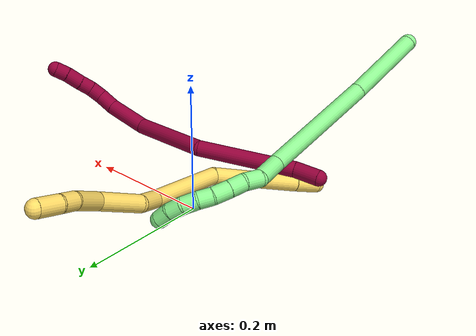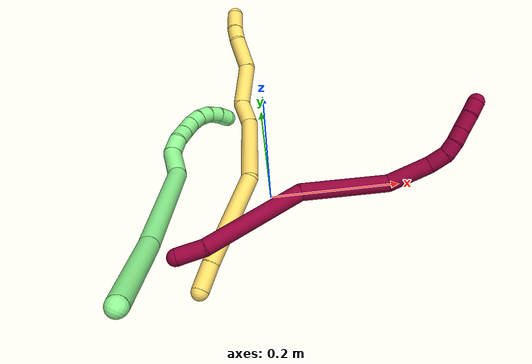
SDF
<sdf version="1.7">
 <world name="default">
  <model name="5">
   <static>0</static>
   <link name="5">
    <collision name="collision-cylinder-e_1_1_4">
     <pose>0.008206 0.017123 0.00592 -1.2379 0.425278 -0.305196</pose>
     <geometry><cylinder><radius>0.0125</radius><length>0.039779</length></cylinder></geometry>
     <surface>
      <friction><ode><mu>1.16</mu><mu2>1.16</mu2><slip1>0</slip1><slip2>0</slip2></ode></friction>
      <contact><ode><kp>1e+06</kp><kd>1</kd><max_vel>0</max_vel><min_depth>0.001</min_depth></ode></contact>
     </surface>
    </collision>
    <visual name="visual-cylinder-e_1_1_4">
     <pose>0.008206 0.017123 0.00592 -1.2379 0.425278 -0.305196</pose>
     <geometry><cylinder><radius>0.0125</radius><length>0.039779</length></cylinder></geometry>
     <material><ambient>1 0.858824 0.4 1</ambient></material>
    </visual>
    <collision name="collision-cylinder-e_2_4_5">
     <pose>0.048808 0.091566 0.031817 -1.23545 0.490249 -0.351789</pose>
     <geometry><cylinder><radius>0.0125</radius><length>0.137611</length></cylinder></geometry>
     <surface>
      <friction><ode><mu>1.16</mu><mu2>1.16</mu2><slip1>0</slip1><slip2>0</slip2></ode></friction>
      <contact><ode><kp>1e+06</kp><kd>1</kd><max_vel>0</max_vel><min_depth>0.001</min_depth></ode></contact>
     </surface>
    </collision>
    <visual name="visual-cylinder-e_2_4_5">
     <pose>0.048808 0.091566 0.031817 -1.23545 0.490249 -0.351789</pose>
     <geometry><cylinder><radius>0.0125</radius><length>0.137611</length></cylinder></geometry>
     <material><ambient>1 0.858824 0.4 1</ambient></material>
    </visual>
    <collision name="collision-cylinder-e_3_5_6">
     <pose>0.08397 0.203935 0.059121 -1.43846 0.049747 -0.043566</pose>
     <geometry><cylinder><radius>0.0125</radius><length>0.111206</length></cylinder></geometry>
     <surface>
      <friction><ode><mu>1.16</mu><mu2>1.16</mu2><slip1>0</slip1><slip2>0</slip2></ode></friction>
      <contact><ode><kp>1e+06</kp><kd>1</kd><max_vel>0</max_vel><min_depth>0.001</min_depth></ode></contact>
     </surface>
    </collision>
    <visual name="visual-cylinder-e_3_5_6">
     <pose>0.08397 0.203935 0.059121 -1.43846 0.049747 -0.043566</pose>
     <geometry><cylinder><radius>0.0125</radius><length>0.111206</length></cylinder></geometry>
     <material><ambient>1 0.858824 0.4 1</ambient></material>
    </visual>
    <collision name="collision-cylinder-e_4_6_7">
     <pose>0.082564 0.275597 0.07439 -1.12493 -0.222772 0.140783</pose>
     <geometry><cylinder><radius>0.0125</radius><length>0.03776</length></cylinder></geometry>
     <surface>
      <friction><ode><mu>1.16</mu><mu2>1.16</mu2><slip1>0</slip1><slip2>0</slip2></ode></friction>
      <contact><ode><kp>1e+06</kp><kd>1</kd><max_vel>0</max_vel><min_depth>0.001</min_depth></ode></contact>
     </surface>
    </collision>
    <visual name="visual-cylinder-e_4_6_7">
     <pose>0.082564 0.275597 0.07439 -1.12493 -0.222772 0.140783</pose>
     <geometry><cylinder><radius>0.0125</radius><length>0.03776</length></cylinder></geometry>
     <material><ambient>1 0.858824 0.4 1</ambient></material>
    </visual>
    <collision name="collision-cylinder-e_5_7_8">
     <pose>0.086116 0.321503 0.096524 -1.11959 0.23296 -0.146389</pose>
     <geometry><cylinder><radius>0.0125</radius><length>0.066908</length></cylinder></geometry>
     <surface>
      <friction><ode><mu>1.16</mu><mu2>1.16</mu2><slip1>0</slip1><slip2>0</slip2></ode></friction>
      <contact><ode><kp>1e+06</kp><kd>1</kd><max_vel>0</max_vel><min_depth>0.001</min_depth></ode></contact>
     </surface>
    </collision>
    <visual name="visual-cylinder-e_5_7_8">
     <pose>0.086116 0.321503 0.096524 -1.11959 0.23296 -0.146389</pose>
     <geometry><cylinder><radius>0.0125</radius><length>0.066908</length></cylinder></geometry>
     <material><ambient>1 0.858824 0.4 1</ambient></material>
    </visual>
    <collision name="collision-cylinder-e_6_8_9">
     <pose>0.089291 0.370951 0.124979 -0.955018 -0.182175 0.094458</pose>
     <geometry><cylinder><radius>0.0125</radius><length>0.050211</length></cylinder></geometry>
     <surface>
      <friction><ode><mu>1.16</mu><mu2>1.16</mu2><slip1>0</slip1><slip2>0</slip2></ode></friction>
      <contact><ode><kp>1e+06</kp><kd>1</kd><max_vel>0</max_vel><min_depth>0.001</min_depth></ode></contact>
     </surface>
    </collision>
    <visual name="visual-cylinder-e_6_8_9">
     <pose>0.089291 0.370951 0.124979 -0.955018 -0.182175 0.094458</pose>
     <geometry><cylinder><radius>0.0125</radius><length>0.050211</length></cylinder></geometry>
     <material><ambient>1 0.858824 0.4 1</ambient></material>
    </visual>
    <collision name="collision-cylinder-e_7_9_10">
     <pose>0.083806 0.401878 0.143663 -1.18114 -0.080214 0.05379</pose>
     <geometry><cylinder><radius>0.0125</radius><length>0.023364</length></cylinder></geometry>
     <surface>
      <friction><ode><mu>1.16</mu><mu2>1.16</mu2><slip1>0</slip1><slip2>0</slip2></ode></friction>
      <contact><ode><kp>1e+06</kp><kd>1</kd><max_vel>0</max_vel><min_depth>0.001</min_depth></ode></contact>
     </surface>
    </collision>
    <visual name="visual-cylinder-e_7_9_10">
     <pose>0.083806 0.401878 0.143663 -1.18114 -0.080214 0.05379</pose>
     <geometry><cylinder><radius>0.0125</radius><length>0.023364</length></cylinder></geometry>
     <material><ambient>1 0.858824 0.4 1</ambient></material>
    </visual>
    <collision name="collision-cylinder-e_8_10_2">
     <pose>0.084178 0.42849 0.152806 -1.28123 0.078972 -0.058887</pose>
     <geometry><cylinder><radius>0.0125</radius><length>0.03316</length></cylinder></geometry>
     <surface>
      <friction><ode><mu>1.16</mu><mu2>1.16</mu2><slip1>0</slip1><slip2>0</slip2></ode></friction>
      <contact><ode><kp>1e+06</kp><kd>1</kd><max_vel>0</max_vel><min_depth>0.001</min_depth></ode></contact>
     </surface>
    </collision>
    <visual name="visual-cylinder-e_8_10_2">
     <pose>0.084178 0.42849 0.152806 -1.28123 0.078972 -0.058887</pose>
     <geometry><cylinder><radius>0.0125</radius><length>0.03316</length></cylinder></geometry>
     <material><ambient>1 0.858824 0.4 1</ambient></material>
    </visual>
    <collision name="collision-sphere-2">
     <pose>0.085486 0.44433 0.157526 0 -0 0</pose>
     <geometry><sphere><radius>0.0125</radius></sphere></geometry>
     <surface>
      <friction><ode><mu>1.16</mu><mu2>1.16</mu2><slip1>0</slip1><slip2>0</slip2></ode></friction>
      <contact><ode><kp>1e+06</kp><kd>1</kd><max_vel>0</max_vel><min_depth>0.001</min_depth></ode></contact>
     </surface>
    </collision>
    <visual name="visual-sphere-2">
     <pose>0.085486 0.44433 0.157526 0 -0 0</pose>
     <geometry><sphere><radius>0.0125</radius></sphere></geometry>
     <material><ambient>1 0.858824 0.4 1</ambient></material>
    </visual>
    <collision name="collision-sphere-10">
     <pose>0.08287 0.41265 0.148087 0 -0 0</pose>
     <geometry><sphere><radius>0.0125</radius></sphere></geometry>
     <surface>
      <friction><ode><mu>1.16</mu><mu2>1.16</mu2><slip1>0</slip1><slip2>0</slip2></ode></friction>
      <contact><ode><kp>1e+06</kp><kd>1</kd><max_vel>0</max_vel><min_depth>0.001</min_depth></ode></contact>
     </surface>
    </collision>
    <visual name="visual-sphere-10">
     <pose>0.08287 0.41265 0.148087 0 -0 0</pose>
     <geometry><sphere><radius>0.0125</radius></sphere></geometry>
     <material><ambient>1 0.858824 0.4 1</ambient></material>
    </visual>
    <collision name="collision-sphere-9">
     <pose>0.084742 0.391106 0.13924 0 -0 0</pose>
     <geometry><sphere><radius>0.0125</radius></sphere></geometry>
     <surface>
      <friction><ode><mu>1.16</mu><mu2>1.16</mu2><slip1>0</slip1><slip2>0</slip2></ode></friction>
      <contact><ode><kp>1e+06</kp><kd>1</kd><max_vel>0</max_vel><min_depth>0.001</min_depth></ode></contact>
     </surface>
    </collision>
    <visual name="visual-sphere-9">
     <pose>0.084742 0.391106 0.13924 0 -0 0</pose>
     <geometry><sphere><radius>0.0125</radius></sphere></geometry>
     <material><ambient>1 0.858824 0.4 1</ambient></material>
    </visual>
    <collision name="collision-sphere-4">
     <pose>0.016412 0.034246 0.011841 0 -0 0</pose>
     <geometry><sphere><radius>0.0125</radius></sphere></geometry>
     <surface>
      <friction><ode><mu>1.16</mu><mu2>1.16</mu2><slip1>0</slip1><slip2>0</slip2></ode></friction>
      <contact><ode><kp>1e+06</kp><kd>1</kd><max_vel>0</max_vel><min_depth>0.001</min_depth></ode></contact>
     </surface>
    </collision>
    <visual name="visual-sphere-4">
     <pose>0.016412 0.034246 0.011841 0 -0 0</pose>
     <geometry><sphere><radius>0.0125</radius></sphere></geometry>
     <material><ambient>1 0.858824 0.4 1</ambient></material>
    </visual>
    <collision name="collision-sphere-1">
     <geometry><sphere><radius>0.0125</radius></sphere></geometry>
     <surface>
      <friction><ode><mu>1.16</mu><mu2>1.16</mu2><slip1>0</slip1><slip2>0</slip2></ode></friction>
      <contact><ode><kp>1e+06</kp><kd>1</kd><max_vel>0</max_vel><min_depth>0.001</min_depth></ode></contact>
     </surface>
    </collision>
    <visual name="visual-sphere-1">
     <geometry><sphere><radius>0.0125</radius></sphere></geometry>
     <material><ambient>1 0.858824 0.4 1</ambient></material>
    </visual>
    <collision name="collision-sphere-8">
     <pose>0.093839 0.350796 0.110718 0 -0 0</pose>
     <geometry><sphere><radius>0.0125</radius></sphere></geometry>
     <surface>
      <friction><ode><mu>1.16</mu><mu2>1.16</mu2><slip1>0</slip1><slip2>0</slip2></ode></friction>
      <contact><ode><kp>1e+06</kp><kd>1</kd><max_vel>0</max_vel><min_depth>0.001</min_depth></ode></contact>
     </surface>
    </collision>
    <visual name="visual-sphere-8">
     <pose>0.093839 0.350796 0.110718 0 -0 0</pose>
     <geometry><sphere><radius>0.0125</radius></sphere></geometry>
     <material><ambient>1 0.858824 0.4 1</ambient></material>
    </visual>
    <collision name="collision-sphere-5">
     <pose>0.081205 0.148886 0.051793 0 -0 0</pose>
     <geometry><sphere><radius>0.0125</radius></sphere></geometry>
     <surface>
      <friction><ode><mu>1.16</mu><mu2>1.16</mu2><slip1>0</slip1><slip2>0</slip2></ode></friction>
      <contact><ode><kp>1e+06</kp><kd>1</kd><max_vel>0</max_vel><min_depth>0.001</min_depth></ode></contact>
     </surface>
    </collision>
    <visual name="visual-sphere-5">
     <pose>0.081205 0.148886 0.051793 0 -0 0</pose>
     <geometry><sphere><radius>0.0125</radius></sphere></geometry>
     <material><ambient>1 0.858824 0.4 1</ambient></material>
    </visual>
    <collision name="collision-sphere-6">
     <pose>0.086735 0.258984 0.066449 0 -0 0</pose>
     <geometry><sphere><radius>0.0125</radius></sphere></geometry>
     <surface>
      <friction><ode><mu>1.16</mu><mu2>1.16</mu2><slip1>0</slip1><slip2>0</slip2></ode></friction>
      <contact><ode><kp>1e+06</kp><kd>1</kd><max_vel>0</max_vel><min_depth>0.001</min_depth></ode></contact>
     </surface>
    </collision>
    <visual name="visual-sphere-6">
     <pose>0.086735 0.258984 0.066449 0 -0 0</pose>
     <geometry><sphere><radius>0.0125</radius></sphere></geometry>
     <material><ambient>1 0.858824 0.4 1</ambient></material>
    </visual>
    <collision name="collision-sphere-7">
     <pose>0.078393 0.292211 0.08233 0 -0 0</pose>
     <geometry><sphere><radius>0.0125</radius></sphere></geometry>
     <surface>
      <friction><ode><mu>1.16</mu><mu2>1.16</mu2><slip1>0</slip1><slip2>0</slip2></ode></friction>
      <contact><ode><kp>1e+06</kp><kd>1</kd><max_vel>0</max_vel><min_depth>0.001</min_depth></ode></contact>
     </surface>
    </collision>
    <visual name="visual-sphere-7">
     <pose>0.078393 0.292211 0.08233 0 -0 0</pose>
     <geometry><sphere><radius>0.0125</radius></sphere></geometry>
     <material><ambient>1 0.858824 0.4 1</ambient></material>
    </visual>
    <inertial>
     <pose>0.068987 0.220205 0.07031 0 -0 0</pose>
     <mass>0.5</mass>
     <inertia>
      <ixx>0.00029</ixx>
      <ixy>0</ixy>
      <ixz>0</ixz>
      <iyy>0.000104</iyy>
      <iyz>0</iyz>
      <izz>-0.000459</izz>
     </inertia>
    </inertial>
   </link>
   <pose>-0.107225 -0.165229 0.013046 -0.07638 -0.115356 -0.018087</pose>
  </model>
  <model name="8">
   <static>0</static>
   <link name="8">
    <collision name="collision-cylinder-e_1_1_4">
     <pose>0.017876 0.003053 -0.00778 -2.76762 1.13346 -2.56363</pose>
     <geometry><cylinder><radius>0.0125</radius><length>0.039466</length></cylinder></geometry>
     <surface>
      <friction><ode><mu>1.16</mu><mu2>1.16</mu2><slip1>0</slip1><slip2>0</slip2></ode></friction>
      <contact><ode><kp>1e+06</kp><kd>1</kd><max_vel>0</max_vel><min_depth>0.001</min_depth></ode></contact>
     </surface>
    </collision>
    <visual name="visual-cylinder-e_1_1_4">
     <pose>0.017876 0.003053 -0.00778 -2.76762 1.13346 -2.56363</pose>
     <geometry><cylinder><radius>0.0125</radius><length>0.039466</length></cylinder></geometry>
     <material><ambient>0.584314 0 0.227451 1</ambient></material>
    </visual>
    <collision name="collision-cylinder-e_2_4_5">
     <pose>0.109641 0.022377 -0.026862 -2.17791 1.30884 -1.94501</pose>
     <geometry><cylinder><radius>0.0125</radius><length>0.152998</length></cylinder></geometry>
     <surface>
      <friction><ode><mu>1.16</mu><mu2>1.16</mu2><slip1>0</slip1><slip2>0</slip2></ode></friction>
      <contact><ode><kp>1e+06</kp><kd>1</kd><max_vel>0</max_vel><min_depth>0.001</min_depth></ode></contact>
     </surface>
    </collision>
    <visual name="visual-cylinder-e_2_4_5">
     <pose>0.109641 0.022377 -0.026862 -2.17791 1.30884 -1.94501</pose>
     <geometry><cylinder><radius>0.0125</radius><length>0.152998</length></cylinder></geometry>
     <material><ambient>0.584314 0 0.227451 1</ambient></material>
    </visual>
    <collision name="collision-cylinder-e_3_5_6">
     <pose>0.233898 0.051314 -0.074525 -2.80639 0.918102 -2.48198</pose>
     <geometry><cylinder><radius>0.0125</radius><length>0.126799</length></cylinder></geometry>
     <surface>
      <friction><ode><mu>1.16</mu><mu2>1.16</mu2><slip1>0</slip1><slip2>0</slip2></ode></friction>
      <contact><ode><kp>1e+06</kp><kd>1</kd><max_vel>0</max_vel><min_depth>0.001</min_depth></ode></contact>
     </surface>
    </collision>
    <visual name="visual-cylinder-e_3_5_6">
     <pose>0.233898 0.051314 -0.074525 -2.80639 0.918102 -2.48198</pose>
     <geometry><cylinder><radius>0.0125</radius><length>0.126799</length></cylinder></geometry>
     <material><ambient>0.584314 0 0.227451 1</ambient></material>
    </visual>
    <collision name="collision-cylinder-e_4_6_7">
     <pose>0.314103 0.062049 -0.123232 2.98637 1.17419 2.90888</pose>
     <geometry><cylinder><radius>0.0125</radius><length>0.064697</length></cylinder></geometry>
     <surface>
      <friction><ode><mu>1.16</mu><mu2>1.16</mu2><slip1>0</slip1><slip2>0</slip2></ode></friction>
      <contact><ode><kp>1e+06</kp><kd>1</kd><max_vel>0</max_vel><min_depth>0.001</min_depth></ode></contact>
     </surface>
    </collision>
    <visual name="visual-cylinder-e_4_6_7">
     <pose>0.314103 0.062049 -0.123232 2.98637 1.17419 2.90888</pose>
     <geometry><cylinder><radius>0.0125</radius><length>0.064697</length></cylinder></geometry>
     <material><ambient>0.584314 0 0.227451 1</ambient></material>
    </visual>
    <collision name="collision-cylinder-e_5_7_8">
     <pose>0.356975 0.056668 -0.139755 2.45148 1.1769 2.15344</pose>
     <geometry><cylinder><radius>0.0125</radius><length>0.028231</length></cylinder></geometry>
     <surface>
      <friction><ode><mu>1.16</mu><mu2>1.16</mu2><slip1>0</slip1><slip2>0</slip2></ode></friction>
      <contact><ode><kp>1e+06</kp><kd>1</kd><max_vel>0</max_vel><min_depth>0.001</min_depth></ode></contact>
     </surface>
    </collision>
    <visual name="visual-cylinder-e_5_7_8">
     <pose>0.356975 0.056668 -0.139755 2.45148 1.1769 2.15344</pose>
     <geometry><cylinder><radius>0.0125</radius><length>0.028231</length></cylinder></geometry>
     <material><ambient>0.584314 0 0.227451 1</ambient></material>
    </visual>
    <collision name="collision-cylinder-e_6_8_9">
     <pose>0.380073 0.049859 -0.143056 1.31543 1.23852 1.0066</pose>
     <geometry><cylinder><radius>0.0125</radius><length>0.021293</length></cylinder></geometry>
     <surface>
      <friction><ode><mu>1.16</mu><mu2>1.16</mu2><slip1>0</slip1><slip2>0</slip2></ode></friction>
      <contact><ode><kp>1e+06</kp><kd>1</kd><max_vel>0</max_vel><min_depth>0.001</min_depth></ode></contact>
     </surface>
    </collision>
    <visual name="visual-cylinder-e_6_8_9">
     <pose>0.380073 0.049859 -0.143056 1.31543 1.23852 1.0066</pose>
     <geometry><cylinder><radius>0.0125</radius><length>0.021293</length></cylinder></geometry>
     <material><ambient>0.584314 0 0.227451 1</ambient></material>
    </visual>
    <collision name="collision-cylinder-e_7_9_10">
     <pose>0.399724 0.044259 -0.139604 0.715929 1.22883 0.516068</pose>
     <geometry><cylinder><radius>0.0125</radius><length>0.020352</length></cylinder></geometry>
     <surface>
      <friction><ode><mu>1.16</mu><mu2>1.16</mu2><slip1>0</slip1><slip2>0</slip2></ode></friction>
      <contact><ode><kp>1e+06</kp><kd>1</kd><max_vel>0</max_vel><min_depth>0.001</min_depth></ode></contact>
     </surface>
    </collision>
    <visual name="visual-cylinder-e_7_9_10">
     <pose>0.399724 0.044259 -0.139604 0.715929 1.22883 0.516068</pose>
     <geometry><cylinder><radius>0.0125</radius><length>0.020352</length></cylinder></geometry>
     <material><ambient>0.584314 0 0.227451 1</ambient></material>
    </visual>
    <collision name="collision-cylinder-e_8_10_11">
     <pose>0.421405 0.038566 -0.134201 0.884656 1.21726 0.637609</pose>
     <geometry><cylinder><radius>0.0125</radius><length>0.025783</length></cylinder></geometry>
     <surface>
      <friction><ode><mu>1.16</mu><mu2>1.16</mu2><slip1>0</slip1><slip2>0</slip2></ode></friction>
      <contact><ode><kp>1e+06</kp><kd>1</kd><max_vel>0</max_vel><min_depth>0.001</min_depth></ode></contact>
     </surface>
    </collision>
    <visual name="visual-cylinder-e_8_10_11">
     <pose>0.421405 0.038566 -0.134201 0.884656 1.21726 0.637609</pose>
     <geometry><cylinder><radius>0.0125</radius><length>0.025783</length></cylinder></geometry>
     <material><ambient>0.584314 0 0.227451 1</ambient></material>
    </visual>
    <collision name="collision-cylinder-e_9_11_2">
     <pose>0.443211 0.033685 -0.128635 0.480606 1.26286 0.354633</pose>
     <geometry><cylinder><radius>0.0125</radius><length>0.020382</length></cylinder></geometry>
     <surface>
      <friction><ode><mu>1.16</mu><mu2>1.16</mu2><slip1>0</slip1><slip2>0</slip2></ode></friction>
      <contact><ode><kp>1e+06</kp><kd>1</kd><max_vel>0</max_vel><min_depth>0.001</min_depth></ode></contact>
     </surface>
    </collision>
    <visual name="visual-cylinder-e_9_11_2">
     <pose>0.443211 0.033685 -0.128635 0.480606 1.26286 0.354633</pose>
     <geometry><cylinder><radius>0.0125</radius><length>0.020382</length></cylinder></geometry>
     <material><ambient>0.584314 0 0.227451 1</ambient></material>
    </visual>
    <collision name="collision-sphere-2">
     <pose>0.452923 0.032257 -0.125896 0 -0 0</pose>
     <geometry><sphere><radius>0.0125</radius></sphere></geometry>
     <surface>
      <friction><ode><mu>1.16</mu><mu2>1.16</mu2><slip1>0</slip1><slip2>0</slip2></ode></friction>
      <contact><ode><kp>1e+06</kp><kd>1</kd><max_vel>0</max_vel><min_depth>0.001</min_depth></ode></contact>
     </surface>
    </collision>
    <visual name="visual-sphere-2">
     <pose>0.452923 0.032257 -0.125896 0 -0 0</pose>
     <geometry><sphere><radius>0.0125</radius></sphere></geometry>
     <material><ambient>0.584314 0 0.227451 1</ambient></material>
    </visual>
    <collision name="collision-sphere-11">
     <pose>0.433499 0.035113 -0.131374 0 -0 0</pose>
     <geometry><sphere><radius>0.0125</radius></sphere></geometry>
     <surface>
      <friction><ode><mu>1.16</mu><mu2>1.16</mu2><slip1>0</slip1><slip2>0</slip2></ode></friction>
      <contact><ode><kp>1e+06</kp><kd>1</kd><max_vel>0</max_vel><min_depth>0.001</min_depth></ode></contact>
     </surface>
    </collision>
    <visual name="visual-sphere-11">
     <pose>0.433499 0.035113 -0.131374 0 -0 0</pose>
     <geometry><sphere><radius>0.0125</radius></sphere></geometry>
     <material><ambient>0.584314 0 0.227451 1</ambient></material>
    </visual>
    <collision name="collision-sphere-10">
     <pose>0.409311 0.04202 -0.137029 0 -0 0</pose>
     <geometry><sphere><radius>0.0125</radius></sphere></geometry>
     <surface>
      <friction><ode><mu>1.16</mu><mu2>1.16</mu2><slip1>0</slip1><slip2>0</slip2></ode></friction>
      <contact><ode><kp>1e+06</kp><kd>1</kd><max_vel>0</max_vel><min_depth>0.001</min_depth></ode></contact>
     </surface>
    </collision>
    <visual name="visual-sphere-10">
     <pose>0.409311 0.04202 -0.137029 0 -0 0</pose>
     <geometry><sphere><radius>0.0125</radius></sphere></geometry>
     <material><ambient>0.584314 0 0.227451 1</ambient></material>
    </visual>
    <collision name="collision-sphere-9">
     <pose>0.390137 0.046499 -0.142178 0 -0 0</pose>
     <geometry><sphere><radius>0.0125</radius></sphere></geometry>
     <surface>
      <friction><ode><mu>1.16</mu><mu2>1.16</mu2><slip1>0</slip1><slip2>0</slip2></ode></friction>
      <contact><ode><kp>1e+06</kp><kd>1</kd><max_vel>0</max_vel><min_depth>0.001</min_depth></ode></contact>
     </surface>
    </collision>
    <visual name="visual-sphere-9">
     <pose>0.390137 0.046499 -0.142178 0 -0 0</pose>
     <geometry><sphere><radius>0.0125</radius></sphere></geometry>
     <material><ambient>0.584314 0 0.227451 1</ambient></material>
    </visual>
    <collision name="collision-sphere-4">
     <pose>0.035751 0.006106 -0.01556 0 -0 0</pose>
     <geometry><sphere><radius>0.0125</radius></sphere></geometry>
     <surface>
      <friction><ode><mu>1.16</mu><mu2>1.16</mu2><slip1>0</slip1><slip2>0</slip2></ode></friction>
      <contact><ode><kp>1e+06</kp><kd>1</kd><max_vel>0</max_vel><min_depth>0.001</min_depth></ode></contact>
     </surface>
    </collision>
    <visual name="visual-sphere-4">
     <pose>0.035751 0.006106 -0.01556 0 -0 0</pose>
     <geometry><sphere><radius>0.0125</radius></sphere></geometry>
     <material><ambient>0.584314 0 0.227451 1</ambient></material>
    </visual>
    <collision name="collision-sphere-1">
     <geometry><sphere><radius>0.0125</radius></sphere></geometry>
     <surface>
      <friction><ode><mu>1.16</mu><mu2>1.16</mu2><slip1>0</slip1><slip2>0</slip2></ode></friction>
      <contact><ode><kp>1e+06</kp><kd>1</kd><max_vel>0</max_vel><min_depth>0.001</min_depth></ode></contact>
     </surface>
    </collision>
    <visual name="visual-sphere-1">
     <geometry><sphere><radius>0.0125</radius></sphere></geometry>
     <material><ambient>0.584314 0 0.227451 1</ambient></material>
    </visual>
    <collision name="collision-sphere-8">
     <pose>0.370009 0.053219 -0.143933 0 -0 0</pose>
     <geometry><sphere><radius>0.0125</radius></sphere></geometry>
     <surface>
      <friction><ode><mu>1.16</mu><mu2>1.16</mu2><slip1>0</slip1><slip2>0</slip2></ode></friction>
      <contact><ode><kp>1e+06</kp><kd>1</kd><max_vel>0</max_vel><min_depth>0.001</min_depth></ode></contact>
     </surface>
    </collision>
    <visual name="visual-sphere-8">
     <pose>0.370009 0.053219 -0.143933 0 -0 0</pose>
     <geometry><sphere><radius>0.0125</radius></sphere></geometry>
     <material><ambient>0.584314 0 0.227451 1</ambient></material>
    </visual>
    <collision name="collision-sphere-5">
     <pose>0.18353 0.038647 -0.038164 0 -0 0</pose>
     <geometry><sphere><radius>0.0125</radius></sphere></geometry>
     <surface>
      <friction><ode><mu>1.16</mu><mu2>1.16</mu2><slip1>0</slip1><slip2>0</slip2></ode></friction>
      <contact><ode><kp>1e+06</kp><kd>1</kd><max_vel>0</max_vel><min_depth>0.001</min_depth></ode></contact>
     </surface>
    </collision>
    <visual name="visual-sphere-5">
     <pose>0.18353 0.038647 -0.038164 0 -0 0</pose>
     <geometry><sphere><radius>0.0125</radius></sphere></geometry>
     <material><ambient>0.584314 0 0.227451 1</ambient></material>
    </visual>
    <collision name="collision-sphere-6">
     <pose>0.284266 0.063981 -0.110886 0 -0 0</pose>
     <geometry><sphere><radius>0.0125</radius></sphere></geometry>
     <surface>
      <friction><ode><mu>1.16</mu><mu2>1.16</mu2><slip1>0</slip1><slip2>0</slip2></ode></friction>
      <contact><ode><kp>1e+06</kp><kd>1</kd><max_vel>0</max_vel><min_depth>0.001</min_depth></ode></contact>
     </surface>
    </collision>
    <visual name="visual-sphere-6">
     <pose>0.284266 0.063981 -0.110886 0 -0 0</pose>
     <geometry><sphere><radius>0.0125</radius></sphere></geometry>
     <material><ambient>0.584314 0 0.227451 1</ambient></material>
    </visual>
    <collision name="collision-sphere-7">
     <pose>0.34394 0.060117 -0.135577 0 -0 0</pose>
     <geometry><sphere><radius>0.0125</radius></sphere></geometry>
     <surface>
      <friction><ode><mu>1.16</mu><mu2>1.16</mu2><slip1>0</slip1><slip2>0</slip2></ode></friction>
      <contact><ode><kp>1e+06</kp><kd>1</kd><max_vel>0</max_vel><min_depth>0.001</min_depth></ode></contact>
     </surface>
    </collision>
    <visual name="visual-sphere-7">
     <pose>0.34394 0.060117 -0.135577 0 -0 0</pose>
     <geometry><sphere><radius>0.0125</radius></sphere></geometry>
     <material><ambient>0.584314 0 0.227451 1</ambient></material>
    </visual>
    <inertial>
     <pose>0.227328 0.038616 -0.075508 0 -0 0</pose>
     <mass>0.5</mass>
     <inertia>
      <ixx>-0.000223</ixx>
      <ixy>0</ixy>
      <ixz>0</ixz>
      <iyy>0.000355</iyy>
      <iyz>0</iyz>
      <izz>-0.000578</izz>
     </inertia>
    </inertial>
   </link>
   <pose>-0.134352 -0.131565 0.048572 -1.40136 -0.33956 0.566408</pose>
  </model>
  <model name="13">
   <static>0</static>
   <link name="13">
    <collision name="collision-cylinder-e_1_1_4">
     <pose>-0.027113 0.041167 -0.034288 -2.26527 -0.468491 0.942123</pose>
     <geometry><cylinder><radius>0.0125</radius><length>0.120092</length></cylinder></geometry>
     <surface>
      <friction><ode><mu>1.16</mu><mu2>1.16</mu2><slip1>0</slip1><slip2>0</slip2></ode></friction>
      <contact><ode><kp>1e+06</kp><kd>1</kd><max_vel>0</max_vel><min_depth>0.001</min_depth></ode></contact>
     </surface>
    </collision>
    <visual name="visual-cylinder-e_1_1_4">
     <pose>-0.027113 0.041167 -0.034288 -2.26527 -0.468491 0.942123</pose>
     <geometry><cylinder><radius>0.0125</radius><length>0.120092</length></cylinder></geometry>
     <material><ambient>0.564706 0.984314 0.572549 1</ambient></material>
    </visual>
    <collision name="collision-cylinder-e_2_4_5">
     <pose>-0.088838 0.143886 -0.123831 -2.30235 -0.396306 0.845839</pose>
     <geometry><cylinder><radius>0.0125</radius><length>0.179329</length></cylinder></geometry>
     <surface>
      <friction><ode><mu>1.16</mu><mu2>1.16</mu2><slip1>0</slip1><slip2>0</slip2></ode></friction>
      <contact><ode><kp>1e+06</kp><kd>1</kd><max_vel>0</max_vel><min_depth>0.001</min_depth></ode></contact>
     </surface>
    </collision>
    <visual name="visual-cylinder-e_2_4_5">
     <pose>-0.088838 0.143886 -0.123831 -2.30235 -0.396306 0.845839</pose>
     <geometry><cylinder><radius>0.0125</radius><length>0.179329</length></cylinder></geometry>
     <material><ambient>0.564706 0.984314 0.572549 1</ambient></material>
    </visual>
    <collision name="collision-cylinder-e_3_5_6">
     <pose>-0.122713 0.22291 -0.193868 -2.27292 0.032178 -0.069345</pose>
     <geometry><cylinder><radius>0.0125</radius><length>0.045797</length></cylinder></geometry>
     <surface>
      <friction><ode><mu>1.16</mu><mu2>1.16</mu2><slip1>0</slip1><slip2>0</slip2></ode></friction>
      <contact><ode><kp>1e+06</kp><kd>1</kd><max_vel>0</max_vel><min_depth>0.001</min_depth></ode></contact>
     </surface>
    </collision>
    <visual name="visual-cylinder-e_3_5_6">
     <pose>-0.122713 0.22291 -0.193868 -2.27292 0.032178 -0.069345</pose>
     <geometry><cylinder><radius>0.0125</radius><length>0.045797</length></cylinder></geometry>
     <material><ambient>0.564706 0.984314 0.572549 1</ambient></material>
    </visual>
    <collision name="collision-cylinder-e_4_6_7">
     <pose>-0.124239 0.245692 -0.220172 -2.70983 -0.176523 0.767069</pose>
     <geometry><cylinder><radius>0.0125</radius><length>0.025774</length></cylinder></geometry>
     <surface>
      <friction><ode><mu>1.16</mu><mu2>1.16</mu2><slip1>0</slip1><slip2>0</slip2></ode></friction>
      <contact><ode><kp>1e+06</kp><kd>1</kd><max_vel>0</max_vel><min_depth>0.001</min_depth></ode></contact>
     </surface>
    </collision>
    <visual name="visual-cylinder-e_4_6_7">
     <pose>-0.124239 0.245692 -0.220172 -2.70983 -0.176523 0.767069</pose>
     <geometry><cylinder><radius>0.0125</radius><length>0.025774</length></cylinder></geometry>
     <material><ambient>0.564706 0.984314 0.572549 1</ambient></material>
    </visual>
    <collision name="collision-cylinder-e_5_7_8">
     <pose>-0.131266 0.256168 -0.240395 -2.60569 -0.440026 1.36707</pose>
     <geometry><cylinder><radius>0.0125</radius><length>0.022368</length></cylinder></geometry>
     <surface>
      <friction><ode><mu>1.16</mu><mu2>1.16</mu2><slip1>0</slip1><slip2>0</slip2></ode></friction>
      <contact><ode><kp>1e+06</kp><kd>1</kd><max_vel>0</max_vel><min_depth>0.001</min_depth></ode></contact>
     </surface>
    </collision>
    <visual name="visual-cylinder-e_5_7_8">
     <pose>-0.131266 0.256168 -0.240395 -2.60569 -0.440026 1.36707</pose>
     <geometry><cylinder><radius>0.0125</radius><length>0.022368</length></cylinder></geometry>
     <material><ambient>0.564706 0.984314 0.572549 1</ambient></material>
    </visual>
    <collision name="collision-cylinder-e_6_8_9">
     <pose>-0.141213 0.26669 -0.258924 -2.64278 -0.433581 1.42595</pose>
     <geometry><cylinder><radius>0.0125</radius><length>0.02467</length></cylinder></geometry>
     <surface>
      <friction><ode><mu>1.16</mu><mu2>1.16</mu2><slip1>0</slip1><slip2>0</slip2></ode></friction>
      <contact><ode><kp>1e+06</kp><kd>1</kd><max_vel>0</max_vel><min_depth>0.001</min_depth></ode></contact>
     </surface>
    </collision>
    <visual name="visual-cylinder-e_6_8_9">
     <pose>-0.141213 0.26669 -0.258924 -2.64278 -0.433581 1.42595</pose>
     <geometry><cylinder><radius>0.0125</radius><length>0.02467</length></cylinder></geometry>
     <material><ambient>0.564706 0.984314 0.572549 1</ambient></material>
    </visual>
    <collision name="collision-cylinder-e_7_9_10">
     <pose>-0.151611 0.274607 -0.277133 -2.8448 -0.537002 2.14617</pose>
     <geometry><cylinder><radius>0.0125</radius><length>0.020395</length></cylinder></geometry>
     <surface>
      <friction><ode><mu>1.16</mu><mu2>1.16</mu2><slip1>0</slip1><slip2>0</slip2></ode></friction>
      <contact><ode><kp>1e+06</kp><kd>1</kd><max_vel>0</max_vel><min_depth>0.001</min_depth></ode></contact>
     </surface>
    </collision>
    <visual name="visual-cylinder-e_7_9_10">
     <pose>-0.151611 0.274607 -0.277133 -2.8448 -0.537002 2.14617</pose>
     <geometry><cylinder><radius>0.0125</radius><length>0.020395</length></cylinder></geometry>
     <material><ambient>0.564706 0.984314 0.572549 1</ambient></material>
    </visual>
    <collision name="collision-cylinder-e_8_10_11">
     <pose>-0.164035 0.279068 -0.292723 -2.88425 -0.768353 2.52209</pose>
     <geometry><cylinder><radius>0.0125</radius><length>0.020741</length></cylinder></geometry>
     <surface>
      <friction><ode><mu>1.16</mu><mu2>1.16</mu2><slip1>0</slip1><slip2>0</slip2></ode></friction>
      <contact><ode><kp>1e+06</kp><kd>1</kd><max_vel>0</max_vel><min_depth>0.001</min_depth></ode></contact>
     </surface>
    </collision>
    <visual name="visual-cylinder-e_8_10_11">
     <pose>-0.164035 0.279068 -0.292723 -2.88425 -0.768353 2.52209</pose>
     <geometry><cylinder><radius>0.0125</radius><length>0.020741</length></cylinder></geometry>
     <material><ambient>0.564706 0.984314 0.572549 1</ambient></material>
    </visual>
    <collision name="collision-cylinder-e_9_11_12">
     <pose>-0.1802 0.281901 -0.304777 -2.95067 -1.06754 2.82034</pose>
     <geometry><cylinder><radius>0.0125</radius><length>0.020452</length></cylinder></geometry>
     <surface>
      <friction><ode><mu>1.16</mu><mu2>1.16</mu2><slip1>0</slip1><slip2>0</slip2></ode></friction>
      <contact><ode><kp>1e+06</kp><kd>1</kd><max_vel>0</max_vel><min_depth>0.001</min_depth></ode></contact>
     </surface>
    </collision>
    <visual name="visual-cylinder-e_9_11_12">
     <pose>-0.1802 0.281901 -0.304777 -2.95067 -1.06754 2.82034</pose>
     <geometry><cylinder><radius>0.0125</radius><length>0.020452</length></cylinder></geometry>
     <material><ambient>0.564706 0.984314 0.572549 1</ambient></material>
    </visual>
    <collision name="collision-cylinder-e_10_12_2">
     <pose>-0.198874 0.284007 -0.312463 -2.75128 -1.26423 2.61434</pose>
     <geometry><cylinder><radius>0.0125</radius><length>0.020382</length></cylinder></geometry>
     <surface>
      <friction><ode><mu>1.16</mu><mu2>1.16</mu2><slip1>0</slip1><slip2>0</slip2></ode></friction>
      <contact><ode><kp>1e+06</kp><kd>1</kd><max_vel>0</max_vel><min_depth>0.001</min_depth></ode></contact>
     </surface>
    </collision>
    <visual name="visual-cylinder-e_10_12_2">
     <pose>-0.198874 0.284007 -0.312463 -2.75128 -1.26423 2.61434</pose>
     <geometry><cylinder><radius>0.0125</radius><length>0.020382</length></cylinder></geometry>
     <material><ambient>0.564706 0.984314 0.572549 1</ambient></material>
    </visual>
    <collision name="collision-sphere-2">
     <pose>-0.20859 0.285178 -0.315307 0 -0 0</pose>
     <geometry><sphere><radius>0.0125</radius></sphere></geometry>
     <surface>
      <friction><ode><mu>1.16</mu><mu2>1.16</mu2><slip1>0</slip1><slip2>0</slip2></ode></friction>
      <contact><ode><kp>1e+06</kp><kd>1</kd><max_vel>0</max_vel><min_depth>0.001</min_depth></ode></contact>
     </surface>
    </collision>
    <visual name="visual-sphere-2">
     <pose>-0.20859 0.285178 -0.315307 0 -0 0</pose>
     <geometry><sphere><radius>0.0125</radius></sphere></geometry>
     <material><ambient>0.564706 0.984314 0.572549 1</ambient></material>
    </visual>
    <collision name="collision-sphere-12">
     <pose>-0.189158 0.282837 -0.309619 0 -0 0</pose>
     <geometry><sphere><radius>0.0125</radius></sphere></geometry>
     <surface>
      <friction><ode><mu>1.16</mu><mu2>1.16</mu2><slip1>0</slip1><slip2>0</slip2></ode></friction>
      <contact><ode><kp>1e+06</kp><kd>1</kd><max_vel>0</max_vel><min_depth>0.001</min_depth></ode></contact>
     </surface>
    </collision>
    <visual name="visual-sphere-12">
     <pose>-0.189158 0.282837 -0.309619 0 -0 0</pose>
     <geometry><sphere><radius>0.0125</radius></sphere></geometry>
     <material><ambient>0.564706 0.984314 0.572549 1</ambient></material>
    </visual>
    <collision name="collision-sphere-11">
     <pose>-0.171242 0.280965 -0.299935 0 -0 0</pose>
     <geometry><sphere><radius>0.0125</radius></sphere></geometry>
     <surface>
      <friction><ode><mu>1.16</mu><mu2>1.16</mu2><slip1>0</slip1><slip2>0</slip2></ode></friction>
      <contact><ode><kp>1e+06</kp><kd>1</kd><max_vel>0</max_vel><min_depth>0.001</min_depth></ode></contact>
     </surface>
    </collision>
    <visual name="visual-sphere-11">
     <pose>-0.171242 0.280965 -0.299935 0 -0 0</pose>
     <geometry><sphere><radius>0.0125</radius></sphere></geometry>
     <material><ambient>0.564706 0.984314 0.572549 1</ambient></material>
    </visual>
    <collision name="collision-sphere-10">
     <pose>-0.156828 0.27717 -0.285512 0 -0 0</pose>
     <geometry><sphere><radius>0.0125</radius></sphere></geometry>
     <surface>
      <friction><ode><mu>1.16</mu><mu2>1.16</mu2><slip1>0</slip1><slip2>0</slip2></ode></friction>
      <contact><ode><kp>1e+06</kp><kd>1</kd><max_vel>0</max_vel><min_depth>0.001</min_depth></ode></contact>
     </surface>
    </collision>
    <visual name="visual-sphere-10">
     <pose>-0.156828 0.27717 -0.285512 0 -0 0</pose>
     <geometry><sphere><radius>0.0125</radius></sphere></geometry>
     <material><ambient>0.564706 0.984314 0.572549 1</ambient></material>
    </visual>
    <collision name="collision-sphere-9">
     <pose>-0.146395 0.272045 -0.268754 0 -0 0</pose>
     <geometry><sphere><radius>0.0125</radius></sphere></geometry>
     <surface>
      <friction><ode><mu>1.16</mu><mu2>1.16</mu2><slip1>0</slip1><slip2>0</slip2></ode></friction>
      <contact><ode><kp>1e+06</kp><kd>1</kd><max_vel>0</max_vel><min_depth>0.001</min_depth></ode></contact>
     </surface>
    </collision>
    <visual name="visual-sphere-9">
     <pose>-0.146395 0.272045 -0.268754 0 -0 0</pose>
     <geometry><sphere><radius>0.0125</radius></sphere></geometry>
     <material><ambient>0.564706 0.984314 0.572549 1</ambient></material>
    </visual>
    <collision name="collision-sphere-4">
     <pose>-0.054226 0.082334 -0.068575 0 -0 0</pose>
     <geometry><sphere><radius>0.0125</radius></sphere></geometry>
     <surface>
      <friction><ode><mu>1.16</mu><mu2>1.16</mu2><slip1>0</slip1><slip2>0</slip2></ode></friction>
      <contact><ode><kp>1e+06</kp><kd>1</kd><max_vel>0</max_vel><min_depth>0.001</min_depth></ode></contact>
     </surface>
    </collision>
    <visual name="visual-sphere-4">
     <pose>-0.054226 0.082334 -0.068575 0 -0 0</pose>
     <geometry><sphere><radius>0.0125</radius></sphere></geometry>
     <material><ambient>0.564706 0.984314 0.572549 1</ambient></material>
    </visual>
    <collision name="collision-sphere-1">
     <geometry><sphere><radius>0.0125</radius></sphere></geometry>
     <surface>
      <friction><ode><mu>1.16</mu><mu2>1.16</mu2><slip1>0</slip1><slip2>0</slip2></ode></friction>
      <contact><ode><kp>1e+06</kp><kd>1</kd><max_vel>0</max_vel><min_depth>0.001</min_depth></ode></contact>
     </surface>
    </collision>
    <visual name="visual-sphere-1">
     <geometry><sphere><radius>0.0125</radius></sphere></geometry>
     <material><ambient>0.564706 0.984314 0.572549 1</ambient></material>
    </visual>
    <collision name="collision-sphere-8">
     <pose>-0.13603 0.261335 -0.249095 0 -0 0</pose>
     <geometry><sphere><radius>0.0125</radius></sphere></geometry>
     <surface>
      <friction><ode><mu>1.16</mu><mu2>1.16</mu2><slip1>0</slip1><slip2>0</slip2></ode></friction>
      <contact><ode><kp>1e+06</kp><kd>1</kd><max_vel>0</max_vel><min_depth>0.001</min_depth></ode></contact>
     </surface>
    </collision>
    <visual name="visual-sphere-8">
     <pose>-0.13603 0.261335 -0.249095 0 -0 0</pose>
     <geometry><sphere><radius>0.0125</radius></sphere></geometry>
     <material><ambient>0.564706 0.984314 0.572549 1</ambient></material>
    </visual>
    <collision name="collision-sphere-5">
     <pose>-0.12345 0.205437 -0.179087 0 -0 0</pose>
     <geometry><sphere><radius>0.0125</radius></sphere></geometry>
     <surface>
      <friction><ode><mu>1.16</mu><mu2>1.16</mu2><slip1>0</slip1><slip2>0</slip2></ode></friction>
      <contact><ode><kp>1e+06</kp><kd>1</kd><max_vel>0</max_vel><min_depth>0.001</min_depth></ode></contact>
     </surface>
    </collision>
    <visual name="visual-sphere-5">
     <pose>-0.12345 0.205437 -0.179087 0 -0 0</pose>
     <geometry><sphere><radius>0.0125</radius></sphere></geometry>
     <material><ambient>0.564706 0.984314 0.572549 1</ambient></material>
    </visual>
    <collision name="collision-sphere-6">
     <pose>-0.121976 0.240383 -0.208649 0 -0 0</pose>
     <geometry><sphere><radius>0.0125</radius></sphere></geometry>
     <surface>
      <friction><ode><mu>1.16</mu><mu2>1.16</mu2><slip1>0</slip1><slip2>0</slip2></ode></friction>
      <contact><ode><kp>1e+06</kp><kd>1</kd><max_vel>0</max_vel><min_depth>0.001</min_depth></ode></contact>
     </surface>
    </collision>
    <visual name="visual-sphere-6">
     <pose>-0.121976 0.240383 -0.208649 0 -0 0</pose>
     <geometry><sphere><radius>0.0125</radius></sphere></geometry>
     <material><ambient>0.564706 0.984314 0.572549 1</ambient></material>
    </visual>
    <collision name="collision-sphere-7">
     <pose>-0.126502 0.251001 -0.231695 0 -0 0</pose>
     <geometry><sphere><radius>0.0125</radius></sphere></geometry>
     <surface>
      <friction><ode><mu>1.16</mu><mu2>1.16</mu2><slip1>0</slip1><slip2>0</slip2></ode></friction>
      <contact><ode><kp>1e+06</kp><kd>1</kd><max_vel>0</max_vel><min_depth>0.001</min_depth></ode></contact>
     </surface>
    </collision>
    <visual name="visual-sphere-7">
     <pose>-0.126502 0.251001 -0.231695 0 -0 0</pose>
     <geometry><sphere><radius>0.0125</radius></sphere></geometry>
     <material><ambient>0.564706 0.984314 0.572549 1</ambient></material>
    </visual>
    <inertial>
     <pose>-0.097325 0.16508 -0.153936 0 -0 0</pose>
     <mass>0.5</mass>
     <inertia>
      <ixx>0.000821</ixx>
      <ixy>0</ixy>
      <ixz>0</ixz>
      <iyy>0.000346</iyy>
      <iyz>0</iyz>
      <izz>-0.000211</izz>
     </inertia>
    </inertial>
   </link>
   <pose>-0.16005 -0.313093 0.219738 -2.33997 -0.916506 -3.06176</pose>
  </model>
 </world>
</sdf>
